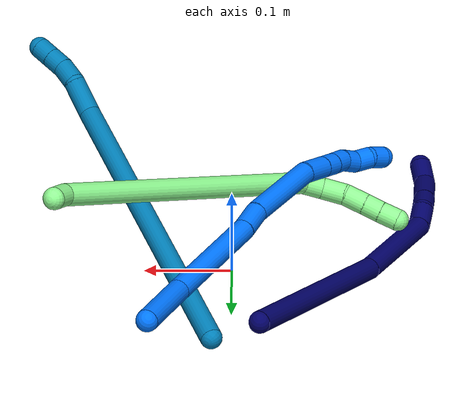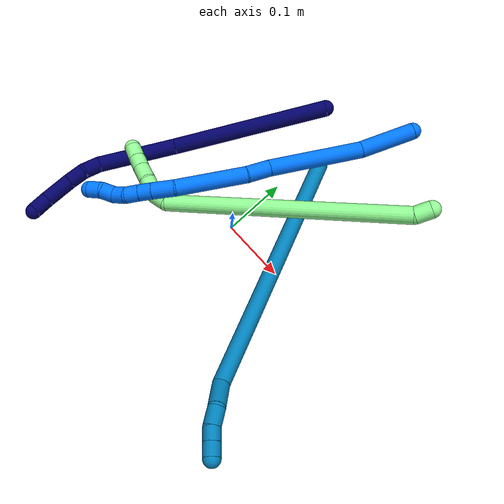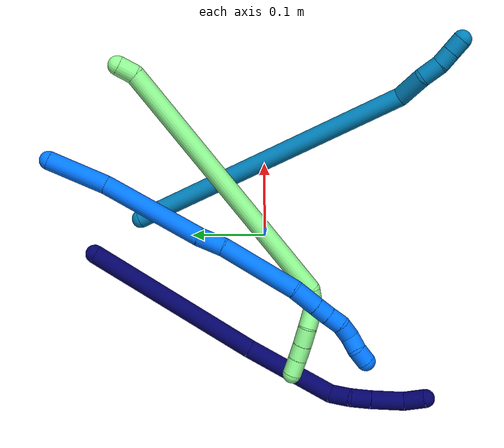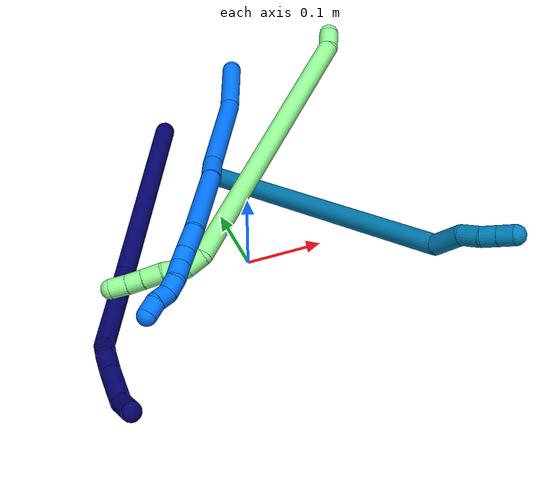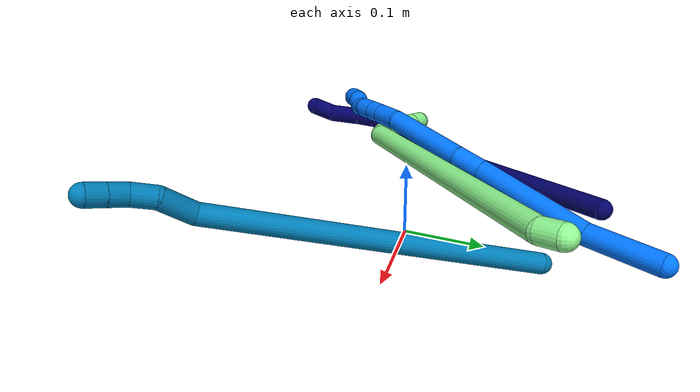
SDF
<sdf version="1.7">
 <world name="default">
  <model name="7">
   <static>0</static>
   <link name="7">
    <collision name="collision-cylinder-e_1_1_4">
     <pose>-0.037841 -0.088324 0.075043 0.866517 -0.315591 -0.146942</pose>
     <geometry><cylinder><radius>0.0125</radius><length>0.243839</length></cylinder></geometry>
     <surface>
      <friction><ode><mu>1.16</mu><mu2>1.16</mu2><slip1>0</slip1><slip2>0</slip2></ode></friction>
      <contact><ode><kp>1e+06</kp><kd>1</kd><max_vel>0</max_vel><min_depth>0.001</min_depth></ode></contact>
     </surface>
    </collision>
    <visual name="visual-cylinder-e_1_1_4">
     <pose>-0.037841 -0.088324 0.075043 0.866517 -0.315591 -0.146942</pose>
     <geometry><cylinder><radius>0.0125</radius><length>0.243839</length></cylinder></geometry>
     <material><ambient>0.003922 0 0.403922 1</ambient></material>
    </visual>
    <collision name="collision-cylinder-e_2_4_5">
     <pose>-0.102594 -0.223923 0.181554 0.983491 -0.442516 -0.239815</pose>
     <geometry><cylinder><radius>0.0125</radius><length>0.12569</length></cylinder></geometry>
     <surface>
      <friction><ode><mu>1.16</mu><mu2>1.16</mu2><slip1>0</slip1><slip2>0</slip2></ode></friction>
      <contact><ode><kp>1e+06</kp><kd>1</kd><max_vel>0</max_vel><min_depth>0.001</min_depth></ode></contact>
     </surface>
    </collision>
    <visual name="visual-cylinder-e_2_4_5">
     <pose>-0.102594 -0.223923 0.181554 0.983491 -0.442516 -0.239815</pose>
     <geometry><cylinder><radius>0.0125</radius><length>0.12569</length></cylinder></geometry>
     <material><ambient>0.003922 0 0.403922 1</ambient></material>
    </visual>
    <collision name="collision-cylinder-e_3_5_6">
     <pose>-0.140182 -0.279227 0.216536 1.15836 -0.883547 -0.599949</pose>
     <geometry><cylinder><radius>0.0125</radius><length>0.027625</length></cylinder></geometry>
     <surface>
      <friction><ode><mu>1.16</mu><mu2>1.16</mu2><slip1>0</slip1><slip2>0</slip2></ode></friction>
      <contact><ode><kp>1e+06</kp><kd>1</kd><max_vel>0</max_vel><min_depth>0.001</min_depth></ode></contact>
     </surface>
    </collision>
    <visual name="visual-cylinder-e_3_5_6">
     <pose>-0.140182 -0.279227 0.216536 1.15836 -0.883547 -0.599949</pose>
     <geometry><cylinder><radius>0.0125</radius><length>0.027625</length></cylinder></geometry>
     <material><ambient>0.003922 0 0.403922 1</ambient></material>
    </visual>
    <collision name="collision-cylinder-e_4_6_7">
     <pose>-0.15997 -0.29333 0.227853 0.661501 -0.7444 -0.266507</pose>
     <geometry><cylinder><radius>0.0125</radius><length>0.026894</length></cylinder></geometry>
     <surface>
      <friction><ode><mu>1.16</mu><mu2>1.16</mu2><slip1>0</slip1><slip2>0</slip2></ode></friction>
      <contact><ode><kp>1e+06</kp><kd>1</kd><max_vel>0</max_vel><min_depth>0.001</min_depth></ode></contact>
     </surface>
    </collision>
    <visual name="visual-cylinder-e_4_6_7">
     <pose>-0.15997 -0.29333 0.227853 0.661501 -0.7444 -0.266507</pose>
     <geometry><cylinder><radius>0.0125</radius><length>0.026894</length></cylinder></geometry>
     <material><ambient>0.003922 0 0.403922 1</ambient></material>
    </visual>
    <collision name="collision-cylinder-e_5_7_8">
     <pose>-0.18508 -0.30866 0.249514 0.588786 -0.76507 -0.242791</pose>
     <geometry><cylinder><radius>0.0125</radius><length>0.0462</length></cylinder></geometry>
     <surface>
      <friction><ode><mu>1.16</mu><mu2>1.16</mu2><slip1>0</slip1><slip2>0</slip2></ode></friction>
      <contact><ode><kp>1e+06</kp><kd>1</kd><max_vel>0</max_vel><min_depth>0.001</min_depth></ode></contact>
     </surface>
    </collision>
    <visual name="visual-cylinder-e_5_7_8">
     <pose>-0.18508 -0.30866 0.249514 0.588786 -0.76507 -0.242791</pose>
     <geometry><cylinder><radius>0.0125</radius><length>0.0462</length></cylinder></geometry>
     <material><ambient>0.003922 0 0.403922 1</ambient></material>
    </visual>
    <collision name="collision-cylinder-e_6_8_2">
     <pose>-0.214852 -0.322466 0.266665 0.944465 -1.18344 -0.661331</pose>
     <geometry><cylinder><radius>0.0125</radius><length>0.02975</length></cylinder></geometry>
     <surface>
      <friction><ode><mu>1.16</mu><mu2>1.16</mu2><slip1>0</slip1><slip2>0</slip2></ode></friction>
      <contact><ode><kp>1e+06</kp><kd>1</kd><max_vel>0</max_vel><min_depth>0.001</min_depth></ode></contact>
     </surface>
    </collision>
    <visual name="visual-cylinder-e_6_8_2">
     <pose>-0.214852 -0.322466 0.266665 0.944465 -1.18344 -0.661331</pose>
     <geometry><cylinder><radius>0.0125</radius><length>0.02975</length></cylinder></geometry>
     <material><ambient>0.003922 0 0.403922 1</ambient></material>
    </visual>
    <collision name="collision-sphere-2">
     <pose>-0.228625 -0.327018 0.269959 0 -0 0</pose>
     <geometry><sphere><radius>0.0125</radius></sphere></geometry>
     <surface>
      <friction><ode><mu>1.16</mu><mu2>1.16</mu2><slip1>0</slip1><slip2>0</slip2></ode></friction>
      <contact><ode><kp>1e+06</kp><kd>1</kd><max_vel>0</max_vel><min_depth>0.001</min_depth></ode></contact>
     </surface>
    </collision>
    <visual name="visual-sphere-2">
     <pose>-0.228625 -0.327018 0.269959 0 -0 0</pose>
     <geometry><sphere><radius>0.0125</radius></sphere></geometry>
     <material><ambient>0.003922 0 0.403922 1</ambient></material>
    </visual>
    <collision name="collision-sphere-4">
     <pose>-0.075682 -0.176647 0.150085 0 -0 0</pose>
     <geometry><sphere><radius>0.0125</radius></sphere></geometry>
     <surface>
      <friction><ode><mu>1.16</mu><mu2>1.16</mu2><slip1>0</slip1><slip2>0</slip2></ode></friction>
      <contact><ode><kp>1e+06</kp><kd>1</kd><max_vel>0</max_vel><min_depth>0.001</min_depth></ode></contact>
     </surface>
    </collision>
    <visual name="visual-sphere-4">
     <pose>-0.075682 -0.176647 0.150085 0 -0 0</pose>
     <geometry><sphere><radius>0.0125</radius></sphere></geometry>
     <material><ambient>0.003922 0 0.403922 1</ambient></material>
    </visual>
    <collision name="collision-sphere-1">
     <geometry><sphere><radius>0.0125</radius></sphere></geometry>
     <surface>
      <friction><ode><mu>1.16</mu><mu2>1.16</mu2><slip1>0</slip1><slip2>0</slip2></ode></friction>
      <contact><ode><kp>1e+06</kp><kd>1</kd><max_vel>0</max_vel><min_depth>0.001</min_depth></ode></contact>
     </surface>
    </collision>
    <visual name="visual-sphere-1">
     <geometry><sphere><radius>0.0125</radius></sphere></geometry>
     <material><ambient>0.003922 0 0.403922 1</ambient></material>
    </visual>
    <collision name="collision-sphere-8">
     <pose>-0.201079 -0.317914 0.263371 0 -0 0</pose>
     <geometry><sphere><radius>0.0125</radius></sphere></geometry>
     <surface>
      <friction><ode><mu>1.16</mu><mu2>1.16</mu2><slip1>0</slip1><slip2>0</slip2></ode></friction>
      <contact><ode><kp>1e+06</kp><kd>1</kd><max_vel>0</max_vel><min_depth>0.001</min_depth></ode></contact>
     </surface>
    </collision>
    <visual name="visual-sphere-8">
     <pose>-0.201079 -0.317914 0.263371 0 -0 0</pose>
     <geometry><sphere><radius>0.0125</radius></sphere></geometry>
     <material><ambient>0.003922 0 0.403922 1</ambient></material>
    </visual>
    <collision name="collision-sphere-5">
     <pose>-0.129505 -0.271198 0.213024 0 -0 0</pose>
     <geometry><sphere><radius>0.0125</radius></sphere></geometry>
     <surface>
      <friction><ode><mu>1.16</mu><mu2>1.16</mu2><slip1>0</slip1><slip2>0</slip2></ode></friction>
      <contact><ode><kp>1e+06</kp><kd>1</kd><max_vel>0</max_vel><min_depth>0.001</min_depth></ode></contact>
     </surface>
    </collision>
    <visual name="visual-sphere-5">
     <pose>-0.129505 -0.271198 0.213024 0 -0 0</pose>
     <geometry><sphere><radius>0.0125</radius></sphere></geometry>
     <material><ambient>0.003922 0 0.403922 1</ambient></material>
    </visual>
    <collision name="collision-sphere-6">
     <pose>-0.150859 -0.287255 0.220049 0 -0 0</pose>
     <geometry><sphere><radius>0.0125</radius></sphere></geometry>
     <surface>
      <friction><ode><mu>1.16</mu><mu2>1.16</mu2><slip1>0</slip1><slip2>0</slip2></ode></friction>
      <contact><ode><kp>1e+06</kp><kd>1</kd><max_vel>0</max_vel><min_depth>0.001</min_depth></ode></contact>
     </surface>
    </collision>
    <visual name="visual-sphere-6">
     <pose>-0.150859 -0.287255 0.220049 0 -0 0</pose>
     <geometry><sphere><radius>0.0125</radius></sphere></geometry>
     <material><ambient>0.003922 0 0.403922 1</ambient></material>
    </visual>
    <collision name="collision-sphere-7">
     <pose>-0.169081 -0.299406 0.235657 0 -0 0</pose>
     <geometry><sphere><radius>0.0125</radius></sphere></geometry>
     <surface>
      <friction><ode><mu>1.16</mu><mu2>1.16</mu2><slip1>0</slip1><slip2>0</slip2></ode></friction>
      <contact><ode><kp>1e+06</kp><kd>1</kd><max_vel>0</max_vel><min_depth>0.001</min_depth></ode></contact>
     </surface>
    </collision>
    <visual name="visual-sphere-7">
     <pose>-0.169081 -0.299406 0.235657 0 -0 0</pose>
     <geometry><sphere><radius>0.0125</radius></sphere></geometry>
     <material><ambient>0.003922 0 0.403922 1</ambient></material>
    </visual>
    <inertial>
     <pose>-0.090479 -0.178276 0.145378 0 -0 0</pose>
     <mass>0.5</mass>
     <inertia>
      <ixx>0.001078</ixx>
      <ixy>0</ixy>
      <ixz>0</ixz>
      <iyy>0.000709</iyy>
      <iyz>0</iyz>
      <izz>0.001504</izz>
     </inertia>
    </inertial>
   </link>
   <pose>-0.031316 0.226175 0.064194 -2.87135 0.510319 2.09467</pose>
  </model>
  <model name="9">
   <static>0</static>
   <link name="9">
    <collision name="collision-cylinder-e_1_1_4">
     <pose>0.023228 -0.149206 0.12324 0.880418 0.119456 0.05632</pose>
     <geometry><cylinder><radius>0.0125</radius><length>0.389821</length></cylinder></geometry>
     <surface>
      <friction><ode><mu>1.16</mu><mu2>1.16</mu2><slip1>0</slip1><slip2>0</slip2></ode></friction>
      <contact><ode><kp>1e+06</kp><kd>1</kd><max_vel>0</max_vel><min_depth>0.001</min_depth></ode></contact>
     </surface>
    </collision>
    <visual name="visual-cylinder-e_1_1_4">
     <pose>0.023228 -0.149206 0.12324 0.880418 0.119456 0.05632</pose>
     <geometry><cylinder><radius>0.0125</radius><length>0.389821</length></cylinder></geometry>
     <material><ambient>0 0.490196 0.709804 1</ambient></material>
    </visual>
    <collision name="collision-cylinder-e_2_4_5">
     <pose>0.058455 -0.313736 0.254701 1.07843 0.603975 0.368567</pose>
     <geometry><cylinder><radius>0.0125</radius><length>0.042255</length></cylinder></geometry>
     <surface>
      <friction><ode><mu>1.16</mu><mu2>1.16</mu2><slip1>0</slip1><slip2>0</slip2></ode></friction>
      <contact><ode><kp>1e+06</kp><kd>1</kd><max_vel>0</max_vel><min_depth>0.001</min_depth></ode></contact>
     </surface>
    </collision>
    <visual name="visual-cylinder-e_2_4_5">
     <pose>0.058455 -0.313736 0.254701 1.07843 0.603975 0.368567</pose>
     <geometry><cylinder><radius>0.0125</radius><length>0.042255</length></cylinder></geometry>
     <material><ambient>0 0.490196 0.709804 1</ambient></material>
    </visual>
    <collision name="collision-cylinder-e_3_5_6">
     <pose>0.073149 -0.340541 0.269435 1.05466 0.201463 0.117582</pose>
     <geometry><cylinder><radius>0.0125</radius><length>0.026945</length></cylinder></geometry>
     <surface>
      <friction><ode><mu>1.16</mu><mu2>1.16</mu2><slip1>0</slip1><slip2>0</slip2></ode></friction>
      <contact><ode><kp>1e+06</kp><kd>1</kd><max_vel>0</max_vel><min_depth>0.001</min_depth></ode></contact>
     </surface>
    </collision>
    <visual name="visual-cylinder-e_3_5_6">
     <pose>0.073149 -0.340541 0.269435 1.05466 0.201463 0.117582</pose>
     <geometry><cylinder><radius>0.0125</radius><length>0.026945</length></cylinder></geometry>
     <material><ambient>0 0.490196 0.709804 1</ambient></material>
    </visual>
    <collision name="collision-cylinder-e_4_6_7">
     <pose>0.078113 -0.361661 0.278658 1.29695 0.222763 0.169108</pose>
     <geometry><cylinder><radius>0.0125</radius><length>0.020534</length></cylinder></geometry>
     <surface>
      <friction><ode><mu>1.16</mu><mu2>1.16</mu2><slip1>0</slip1><slip2>0</slip2></ode></friction>
      <contact><ode><kp>1e+06</kp><kd>1</kd><max_vel>0</max_vel><min_depth>0.001</min_depth></ode></contact>
     </surface>
    </collision>
    <visual name="visual-cylinder-e_4_6_7">
     <pose>0.078113 -0.361661 0.278658 1.29695 0.222763 0.169108</pose>
     <geometry><cylinder><radius>0.0125</radius><length>0.020534</length></cylinder></geometry>
     <material><ambient>0 0.490196 0.709804 1</ambient></material>
    </visual>
    <collision name="collision-cylinder-e_5_7_2">
     <pose>0.082623 -0.380898 0.284083 1.29484 0.221089 0.167466</pose>
     <geometry><cylinder><radius>0.0125</radius><length>0.020446</length></cylinder></geometry>
     <surface>
      <friction><ode><mu>1.16</mu><mu2>1.16</mu2><slip1>0</slip1><slip2>0</slip2></ode></friction>
      <contact><ode><kp>1e+06</kp><kd>1</kd><max_vel>0</max_vel><min_depth>0.001</min_depth></ode></contact>
     </surface>
    </collision>
    <visual name="visual-cylinder-e_5_7_2">
     <pose>0.082623 -0.380898 0.284083 1.29484 0.221089 0.167466</pose>
     <geometry><cylinder><radius>0.0125</radius><length>0.020446</length></cylinder></geometry>
     <material><ambient>0 0.490196 0.709804 1</ambient></material>
    </visual>
    <collision name="collision-sphere-2">
     <pose>0.084865 -0.390494 0.286801 0 -0 0</pose>
     <geometry><sphere><radius>0.0125</radius></sphere></geometry>
     <surface>
      <friction><ode><mu>1.16</mu><mu2>1.16</mu2><slip1>0</slip1><slip2>0</slip2></ode></friction>
      <contact><ode><kp>1e+06</kp><kd>1</kd><max_vel>0</max_vel><min_depth>0.001</min_depth></ode></contact>
     </surface>
    </collision>
    <visual name="visual-sphere-2">
     <pose>0.084865 -0.390494 0.286801 0 -0 0</pose>
     <geometry><sphere><radius>0.0125</radius></sphere></geometry>
     <material><ambient>0 0.490196 0.709804 1</ambient></material>
    </visual>
    <collision name="collision-sphere-7">
     <pose>0.080381 -0.371301 0.281366 0 -0 0</pose>
     <geometry><sphere><radius>0.0125</radius></sphere></geometry>
     <surface>
      <friction><ode><mu>1.16</mu><mu2>1.16</mu2><slip1>0</slip1><slip2>0</slip2></ode></friction>
      <contact><ode><kp>1e+06</kp><kd>1</kd><max_vel>0</max_vel><min_depth>0.001</min_depth></ode></contact>
     </surface>
    </collision>
    <visual name="visual-sphere-7">
     <pose>0.080381 -0.371301 0.281366 0 -0 0</pose>
     <geometry><sphere><radius>0.0125</radius></sphere></geometry>
     <material><ambient>0 0.490196 0.709804 1</ambient></material>
    </visual>
    <collision name="collision-sphere-6">
     <pose>0.075845 -0.352021 0.27595 0 -0 0</pose>
     <geometry><sphere><radius>0.0125</radius></sphere></geometry>
     <surface>
      <friction><ode><mu>1.16</mu><mu2>1.16</mu2><slip1>0</slip1><slip2>0</slip2></ode></friction>
      <contact><ode><kp>1e+06</kp><kd>1</kd><max_vel>0</max_vel><min_depth>0.001</min_depth></ode></contact>
     </surface>
    </collision>
    <visual name="visual-sphere-6">
     <pose>0.075845 -0.352021 0.27595 0 -0 0</pose>
     <geometry><sphere><radius>0.0125</radius></sphere></geometry>
     <material><ambient>0 0.490196 0.709804 1</ambient></material>
    </visual>
    <collision name="collision-sphere-5">
     <pose>0.070453 -0.32906 0.262921 0 -0 0</pose>
     <geometry><sphere><radius>0.0125</radius></sphere></geometry>
     <surface>
      <friction><ode><mu>1.16</mu><mu2>1.16</mu2><slip1>0</slip1><slip2>0</slip2></ode></friction>
      <contact><ode><kp>1e+06</kp><kd>1</kd><max_vel>0</max_vel><min_depth>0.001</min_depth></ode></contact>
     </surface>
    </collision>
    <visual name="visual-sphere-5">
     <pose>0.070453 -0.32906 0.262921 0 -0 0</pose>
     <geometry><sphere><radius>0.0125</radius></sphere></geometry>
     <material><ambient>0 0.490196 0.709804 1</ambient></material>
    </visual>
    <collision name="collision-sphere-1">
     <geometry><sphere><radius>0.0125</radius></sphere></geometry>
     <surface>
      <friction><ode><mu>1.16</mu><mu2>1.16</mu2><slip1>0</slip1><slip2>0</slip2></ode></friction>
      <contact><ode><kp>1e+06</kp><kd>1</kd><max_vel>0</max_vel><min_depth>0.001</min_depth></ode></contact>
     </surface>
    </collision>
    <visual name="visual-sphere-1">
     <geometry><sphere><radius>0.0125</radius></sphere></geometry>
     <material><ambient>0 0.490196 0.709804 1</ambient></material>
    </visual>
    <collision name="collision-sphere-4">
     <pose>0.046456 -0.298412 0.24648 0 -0 0</pose>
     <geometry><sphere><radius>0.0125</radius></sphere></geometry>
     <surface>
      <friction><ode><mu>1.16</mu><mu2>1.16</mu2><slip1>0</slip1><slip2>0</slip2></ode></friction>
      <contact><ode><kp>1e+06</kp><kd>1</kd><max_vel>0</max_vel><min_depth>0.001</min_depth></ode></contact>
     </surface>
    </collision>
    <visual name="visual-sphere-4">
     <pose>0.046456 -0.298412 0.24648 0 -0 0</pose>
     <geometry><sphere><radius>0.0125</radius></sphere></geometry>
     <material><ambient>0 0.490196 0.709804 1</ambient></material>
    </visual>
    <inertial>
     <pose>0.033578 -0.191621 0.155188 0 -0 0</pose>
     <mass>0.5</mass>
     <inertia>
      <ixx>0.005207</ixx>
      <ixy>0</ixy>
      <ixz>0</ixz>
      <iyy>0.003431</iyy>
      <iyz>0</iyz>
      <izz>0.003228</izz>
     </inertia>
    </inertial>
   </link>
   <pose>0.022044 0.170648 0.0115 -0.686403 -1.42634 1.76835</pose>
  </model>
  <model name="13">
   <static>0</static>
   <link name="13">
    <collision name="collision-cylinder-e_1_1_4">
     <pose>-0.000231 -0.000376 -0.011914 3.11007 -0.019373 -1.10205</pose>
     <geometry><cylinder><radius>0.0125</radius><length>0.023843</length></cylinder></geometry>
     <surface>
      <friction><ode><mu>1.16</mu><mu2>1.16</mu2><slip1>0</slip1><slip2>0</slip2></ode></friction>
      <contact><ode><kp>1e+06</kp><kd>1</kd><max_vel>0</max_vel><min_depth>0.001</min_depth></ode></contact>
     </surface>
    </collision>
    <visual name="visual-cylinder-e_1_1_4">
     <pose>-0.000231 -0.000376 -0.011914 3.11007 -0.019373 -1.10205</pose>
     <geometry><cylinder><radius>0.0125</radius><length>0.023843</length></cylinder></geometry>
     <material><ambient>0.564706 0.984314 0.572549 1</ambient></material>
    </visual>
    <collision name="collision-cylinder-e_2_4_5">
     <pose>-0.070845 -0.024563 -0.18549 2.99535 -0.406706 -2.45894</pose>
     <geometry><cylinder><radius>0.0125</radius><length>0.355841</length></cylinder></geometry>
     <surface>
      <friction><ode><mu>1.16</mu><mu2>1.16</mu2><slip1>0</slip1><slip2>0</slip2></ode></friction>
      <contact><ode><kp>1e+06</kp><kd>1</kd><max_vel>0</max_vel><min_depth>0.001</min_depth></ode></contact>
     </surface>
    </collision>
    <visual name="visual-cylinder-e_2_4_5">
     <pose>-0.070845 -0.024563 -0.18549 2.99535 -0.406706 -2.45894</pose>
     <geometry><cylinder><radius>0.0125</radius><length>0.355841</length></cylinder></geometry>
     <material><ambient>0.564706 0.984314 0.572549 1</ambient></material>
    </visual>
    <collision name="collision-cylinder-e_3_5_6">
     <pose>-0.151035 -0.04954 -0.354746 2.98921 -0.906331 -2.83058</pose>
     <geometry><cylinder><radius>0.0125</radius><length>0.024915</length></cylinder></geometry>
     <surface>
      <friction><ode><mu>1.16</mu><mu2>1.16</mu2><slip1>0</slip1><slip2>0</slip2></ode></friction>
      <contact><ode><kp>1e+06</kp><kd>1</kd><max_vel>0</max_vel><min_depth>0.001</min_depth></ode></contact>
     </surface>
    </collision>
    <visual name="visual-cylinder-e_3_5_6">
     <pose>-0.151035 -0.04954 -0.354746 2.98921 -0.906331 -2.83058</pose>
     <geometry><cylinder><radius>0.0125</radius><length>0.024915</length></cylinder></geometry>
     <material><ambient>0.564706 0.984314 0.572549 1</ambient></material>
    </visual>
    <collision name="collision-cylinder-e_4_6_7">
     <pose>-0.174272 -0.054253 -0.364661 2.15055 -1.26502 -1.87079</pose>
     <geometry><cylinder><radius>0.0125</radius><length>0.028168</length></cylinder></geometry>
     <surface>
      <friction><ode><mu>1.16</mu><mu2>1.16</mu2><slip1>0</slip1><slip2>0</slip2></ode></friction>
      <contact><ode><kp>1e+06</kp><kd>1</kd><max_vel>0</max_vel><min_depth>0.001</min_depth></ode></contact>
     </surface>
    </collision>
    <visual name="visual-cylinder-e_4_6_7">
     <pose>-0.174272 -0.054253 -0.364661 2.15055 -1.26502 -1.87079</pose>
     <geometry><cylinder><radius>0.0125</radius><length>0.028168</length></cylinder></geometry>
     <material><ambient>0.564706 0.984314 0.572549 1</ambient></material>
    </visual>
    <collision name="collision-cylinder-e_5_7_8">
     <pose>-0.199702 -0.058452 -0.369649 2.90142 -1.34598 -2.84112</pose>
     <geometry><cylinder><radius>0.0125</radius><length>0.024619</length></cylinder></geometry>
     <surface>
      <friction><ode><mu>1.16</mu><mu2>1.16</mu2><slip1>0</slip1><slip2>0</slip2></ode></friction>
      <contact><ode><kp>1e+06</kp><kd>1</kd><max_vel>0</max_vel><min_depth>0.001</min_depth></ode></contact>
     </surface>
    </collision>
    <visual name="visual-cylinder-e_5_7_8">
     <pose>-0.199702 -0.058452 -0.369649 2.90142 -1.34598 -2.84112</pose>
     <geometry><cylinder><radius>0.0125</radius><length>0.024619</length></cylinder></geometry>
     <material><ambient>0.564706 0.984314 0.572549 1</ambient></material>
    </visual>
    <collision name="collision-cylinder-e_6_8_9">
     <pose>-0.221835 -0.059601 -0.374214 2.88653 -1.3794 -2.83315</pose>
     <geometry><cylinder><radius>0.0125</radius><length>0.020644</length></cylinder></geometry>
     <surface>
      <friction><ode><mu>1.16</mu><mu2>1.16</mu2><slip1>0</slip1><slip2>0</slip2></ode></friction>
      <contact><ode><kp>1e+06</kp><kd>1</kd><max_vel>0</max_vel><min_depth>0.001</min_depth></ode></contact>
     </surface>
    </collision>
    <visual name="visual-cylinder-e_6_8_9">
     <pose>-0.221835 -0.059601 -0.374214 2.88653 -1.3794 -2.83315</pose>
     <geometry><cylinder><radius>0.0125</radius><length>0.020644</length></cylinder></geometry>
     <material><ambient>0.564706 0.984314 0.572549 1</ambient></material>
    </visual>
    <collision name="collision-cylinder-e_7_9_2">
     <pose>-0.242775 -0.061138 -0.377792 2.58582 -1.38999 -2.48228</pose>
     <geometry><cylinder><radius>0.0125</radius><length>0.021971</length></cylinder></geometry>
     <surface>
      <friction><ode><mu>1.16</mu><mu2>1.16</mu2><slip1>0</slip1><slip2>0</slip2></ode></friction>
      <contact><ode><kp>1e+06</kp><kd>1</kd><max_vel>0</max_vel><min_depth>0.001</min_depth></ode></contact>
     </surface>
    </collision>
    <visual name="visual-cylinder-e_7_9_2">
     <pose>-0.242775 -0.061138 -0.377792 2.58582 -1.38999 -2.48228</pose>
     <geometry><cylinder><radius>0.0125</radius><length>0.021971</length></cylinder></geometry>
     <material><ambient>0.564706 0.984314 0.572549 1</ambient></material>
    </visual>
    <collision name="collision-sphere-2">
     <pose>-0.253582 -0.062181 -0.37947 0 -0 0</pose>
     <geometry><sphere><radius>0.0125</radius></sphere></geometry>
     <surface>
      <friction><ode><mu>1.16</mu><mu2>1.16</mu2><slip1>0</slip1><slip2>0</slip2></ode></friction>
      <contact><ode><kp>1e+06</kp><kd>1</kd><max_vel>0</max_vel><min_depth>0.001</min_depth></ode></contact>
     </surface>
    </collision>
    <visual name="visual-sphere-2">
     <pose>-0.253582 -0.062181 -0.37947 0 -0 0</pose>
     <geometry><sphere><radius>0.0125</radius></sphere></geometry>
     <material><ambient>0.564706 0.984314 0.572549 1</ambient></material>
    </visual>
    <collision name="collision-sphere-9">
     <pose>-0.231969 -0.060096 -0.376114 0 -0 0</pose>
     <geometry><sphere><radius>0.0125</radius></sphere></geometry>
     <surface>
      <friction><ode><mu>1.16</mu><mu2>1.16</mu2><slip1>0</slip1><slip2>0</slip2></ode></friction>
      <contact><ode><kp>1e+06</kp><kd>1</kd><max_vel>0</max_vel><min_depth>0.001</min_depth></ode></contact>
     </surface>
    </collision>
    <visual name="visual-sphere-9">
     <pose>-0.231969 -0.060096 -0.376114 0 -0 0</pose>
     <geometry><sphere><radius>0.0125</radius></sphere></geometry>
     <material><ambient>0.564706 0.984314 0.572549 1</ambient></material>
    </visual>
    <collision name="collision-sphere-4">
     <pose>-0.000462 -0.000751 -0.023827 0 -0 0</pose>
     <geometry><sphere><radius>0.0125</radius></sphere></geometry>
     <surface>
      <friction><ode><mu>1.16</mu><mu2>1.16</mu2><slip1>0</slip1><slip2>0</slip2></ode></friction>
      <contact><ode><kp>1e+06</kp><kd>1</kd><max_vel>0</max_vel><min_depth>0.001</min_depth></ode></contact>
     </surface>
    </collision>
    <visual name="visual-sphere-4">
     <pose>-0.000462 -0.000751 -0.023827 0 -0 0</pose>
     <geometry><sphere><radius>0.0125</radius></sphere></geometry>
     <material><ambient>0.564706 0.984314 0.572549 1</ambient></material>
    </visual>
    <collision name="collision-sphere-1">
     <geometry><sphere><radius>0.0125</radius></sphere></geometry>
     <surface>
      <friction><ode><mu>1.16</mu><mu2>1.16</mu2><slip1>0</slip1><slip2>0</slip2></ode></friction>
      <contact><ode><kp>1e+06</kp><kd>1</kd><max_vel>0</max_vel><min_depth>0.001</min_depth></ode></contact>
     </surface>
    </collision>
    <visual name="visual-sphere-1">
     <geometry><sphere><radius>0.0125</radius></sphere></geometry>
     <material><ambient>0.564706 0.984314 0.572549 1</ambient></material>
    </visual>
    <collision name="collision-sphere-8">
     <pose>-0.211702 -0.059105 -0.372314 0 -0 0</pose>
     <geometry><sphere><radius>0.0125</radius></sphere></geometry>
     <surface>
      <friction><ode><mu>1.16</mu><mu2>1.16</mu2><slip1>0</slip1><slip2>0</slip2></ode></friction>
      <contact><ode><kp>1e+06</kp><kd>1</kd><max_vel>0</max_vel><min_depth>0.001</min_depth></ode></contact>
     </surface>
    </collision>
    <visual name="visual-sphere-8">
     <pose>-0.211702 -0.059105 -0.372314 0 -0 0</pose>
     <geometry><sphere><radius>0.0125</radius></sphere></geometry>
     <material><ambient>0.564706 0.984314 0.572549 1</ambient></material>
    </visual>
    <collision name="collision-sphere-5">
     <pose>-0.141227 -0.048374 -0.347153 0 -0 0</pose>
     <geometry><sphere><radius>0.0125</radius></sphere></geometry>
     <surface>
      <friction><ode><mu>1.16</mu><mu2>1.16</mu2><slip1>0</slip1><slip2>0</slip2></ode></friction>
      <contact><ode><kp>1e+06</kp><kd>1</kd><max_vel>0</max_vel><min_depth>0.001</min_depth></ode></contact>
     </surface>
    </collision>
    <visual name="visual-sphere-5">
     <pose>-0.141227 -0.048374 -0.347153 0 -0 0</pose>
     <geometry><sphere><radius>0.0125</radius></sphere></geometry>
     <material><ambient>0.564706 0.984314 0.572549 1</ambient></material>
    </visual>
    <collision name="collision-sphere-6">
     <pose>-0.160842 -0.050706 -0.362339 0 -0 0</pose>
     <geometry><sphere><radius>0.0125</radius></sphere></geometry>
     <surface>
      <friction><ode><mu>1.16</mu><mu2>1.16</mu2><slip1>0</slip1><slip2>0</slip2></ode></friction>
      <contact><ode><kp>1e+06</kp><kd>1</kd><max_vel>0</max_vel><min_depth>0.001</min_depth></ode></contact>
     </surface>
    </collision>
    <visual name="visual-sphere-6">
     <pose>-0.160842 -0.050706 -0.362339 0 -0 0</pose>
     <geometry><sphere><radius>0.0125</radius></sphere></geometry>
     <material><ambient>0.564706 0.984314 0.572549 1</ambient></material>
    </visual>
    <collision name="collision-sphere-7">
     <pose>-0.187703 -0.0578 -0.366984 0 -0 0</pose>
     <geometry><sphere><radius>0.0125</radius></sphere></geometry>
     <surface>
      <friction><ode><mu>1.16</mu><mu2>1.16</mu2><slip1>0</slip1><slip2>0</slip2></ode></friction>
      <contact><ode><kp>1e+06</kp><kd>1</kd><max_vel>0</max_vel><min_depth>0.001</min_depth></ode></contact>
     </surface>
    </collision>
    <visual name="visual-sphere-7">
     <pose>-0.187703 -0.0578 -0.366984 0 -0 0</pose>
     <geometry><sphere><radius>0.0125</radius></sphere></geometry>
     <material><ambient>0.564706 0.984314 0.572549 1</ambient></material>
    </visual>
    <inertial>
     <pose>-0.097433 -0.031049 -0.22105 0 -0 0</pose>
     <mass>0.5</mass>
     <inertia>
      <ixx>-0.004894</ixx>
      <ixy>0</ixy>
      <ixz>0</ixz>
      <iyy>0.000847</iyy>
      <iyz>0</iyz>
      <izz>0.001977</izz>
     </inertia>
    </inertial>
   </link>
   <pose>0.189881 0.182403 0.191675 -1.24773 -0.344745 -0.532076</pose>
  </model>
  <model name="14">
   <static>0</static>
   <link name="14">
    <collision name="collision-cylinder-e_1_1_4">
     <pose>-0.018069 -0.027461 -0.024163 2.2924 -0.458819 -0.953565</pose>
     <geometry><cylinder><radius>0.0125</radius><length>0.081595</length></cylinder></geometry>
     <surface>
      <friction><ode><mu>1.16</mu><mu2>1.16</mu2><slip1>0</slip1><slip2>0</slip2></ode></friction>
      <contact><ode><kp>1e+06</kp><kd>1</kd><max_vel>0</max_vel><min_depth>0.001</min_depth></ode></contact>
     </surface>
    </collision>
    <visual name="visual-cylinder-e_1_1_4">
     <pose>-0.018069 -0.027461 -0.024163 2.2924 -0.458819 -0.953565</pose>
     <geometry><cylinder><radius>0.0125</radius><length>0.081595</length></cylinder></geometry>
     <material><ambient>0 0.462745 1 1</ambient></material>
    </visual>
    <collision name="collision-cylinder-e_2_4_5">
     <pose>-0.072953 -0.10614 -0.079932 2.12367 -0.548987 -0.934752</pose>
     <geometry><cylinder><radius>0.0125</radius><length>0.141105</length></cylinder></geometry>
     <surface>
      <friction><ode><mu>1.16</mu><mu2>1.16</mu2><slip1>0</slip1><slip2>0</slip2></ode></friction>
      <contact><ode><kp>1e+06</kp><kd>1</kd><max_vel>0</max_vel><min_depth>0.001</min_depth></ode></contact>
     </surface>
    </collision>
    <visual name="visual-cylinder-e_2_4_5">
     <pose>-0.072953 -0.10614 -0.079932 2.12367 -0.548987 -0.934752</pose>
     <geometry><cylinder><radius>0.0125</radius><length>0.141105</length></cylinder></geometry>
     <material><ambient>0 0.462745 1 1</ambient></material>
    </visual>
    <collision name="collision-cylinder-e_3_5_6">
     <pose>-0.11707 -0.171353 -0.119259 2.075 -0.428465 -0.706201</pose>
     <geometry><cylinder><radius>0.0125</radius><length>0.035144</length></cylinder></geometry>
     <surface>
      <friction><ode><mu>1.16</mu><mu2>1.16</mu2><slip1>0</slip1><slip2>0</slip2></ode></friction>
      <contact><ode><kp>1e+06</kp><kd>1</kd><max_vel>0</max_vel><min_depth>0.001</min_depth></ode></contact>
     </surface>
    </collision>
    <visual name="visual-cylinder-e_3_5_6">
     <pose>-0.11707 -0.171353 -0.119259 2.075 -0.428465 -0.706201</pose>
     <geometry><cylinder><radius>0.0125</radius><length>0.035144</length></cylinder></geometry>
     <material><ambient>0 0.462745 1 1</ambient></material>
    </visual>
    <collision name="collision-cylinder-e_4_6_7">
     <pose>-0.153712 -0.222313 -0.151688 2.15998 -0.583307 -1.02364</pose>
     <geometry><cylinder><radius>0.0125</radius><length>0.106542</length></cylinder></geometry>
     <surface>
      <friction><ode><mu>1.16</mu><mu2>1.16</mu2><slip1>0</slip1><slip2>0</slip2></ode></friction>
      <contact><ode><kp>1e+06</kp><kd>1</kd><max_vel>0</max_vel><min_depth>0.001</min_depth></ode></contact>
     </surface>
    </collision>
    <visual name="visual-cylinder-e_4_6_7">
     <pose>-0.153712 -0.222313 -0.151688 2.15998 -0.583307 -1.02364</pose>
     <geometry><cylinder><radius>0.0125</radius><length>0.106542</length></cylinder></geometry>
     <material><ambient>0 0.462745 1 1</ambient></material>
    </visual>
    <collision name="collision-cylinder-e_5_7_8">
     <pose>-0.194554 -0.267879 -0.18591 2.40668 -0.731031 -1.56499</pose>
     <geometry><cylinder><radius>0.0125</radius><length>0.034454</length></cylinder></geometry>
     <surface>
      <friction><ode><mu>1.16</mu><mu2>1.16</mu2><slip1>0</slip1><slip2>0</slip2></ode></friction>
      <contact><ode><kp>1e+06</kp><kd>1</kd><max_vel>0</max_vel><min_depth>0.001</min_depth></ode></contact>
     </surface>
    </collision>
    <visual name="visual-cylinder-e_5_7_8">
     <pose>-0.194554 -0.267879 -0.18591 2.40668 -0.731031 -1.56499</pose>
     <geometry><cylinder><radius>0.0125</radius><length>0.034454</length></cylinder></geometry>
     <material><ambient>0 0.462745 1 1</ambient></material>
    </visual>
    <collision name="collision-cylinder-e_6_8_9">
     <pose>-0.21268 -0.281495 -0.201098 2.41752 -0.718657 -1.5626</pose>
     <geometry><cylinder><radius>0.0125</radius><length>0.020122</length></cylinder></geometry>
     <surface>
      <friction><ode><mu>1.16</mu><mu2>1.16</mu2><slip1>0</slip1><slip2>0</slip2></ode></friction>
      <contact><ode><kp>1e+06</kp><kd>1</kd><max_vel>0</max_vel><min_depth>0.001</min_depth></ode></contact>
     </surface>
    </collision>
    <visual name="visual-cylinder-e_6_8_9">
     <pose>-0.21268 -0.281495 -0.201098 2.41752 -0.718657 -1.5626</pose>
     <geometry><cylinder><radius>0.0125</radius><length>0.020122</length></cylinder></geometry>
     <material><ambient>0 0.462745 1 1</ambient></material>
    </visual>
    <collision name="collision-cylinder-e_7_9_10">
     <pose>-0.225825 -0.291918 -0.212759 2.40721 -0.679806 -1.48685</pose>
     <geometry><cylinder><radius>0.0125</radius><length>0.020749</length></cylinder></geometry>
     <surface>
      <friction><ode><mu>1.16</mu><mu2>1.16</mu2><slip1>0</slip1><slip2>0</slip2></ode></friction>
      <contact><ode><kp>1e+06</kp><kd>1</kd><max_vel>0</max_vel><min_depth>0.001</min_depth></ode></contact>
     </surface>
    </collision>
    <visual name="visual-cylinder-e_7_9_10">
     <pose>-0.225825 -0.291918 -0.212759 2.40721 -0.679806 -1.48685</pose>
     <geometry><cylinder><radius>0.0125</radius><length>0.020749</length></cylinder></geometry>
     <material><ambient>0 0.462745 1 1</ambient></material>
    </visual>
    <collision name="collision-cylinder-e_8_10_11">
     <pose>-0.240442 -0.299613 -0.224263 2.74836 -0.935291 -2.39021</pose>
     <geometry><cylinder><radius>0.0125</radius><length>0.020119</length></cylinder></geometry>
     <surface>
      <friction><ode><mu>1.16</mu><mu2>1.16</mu2><slip1>0</slip1><slip2>0</slip2></ode></friction>
      <contact><ode><kp>1e+06</kp><kd>1</kd><max_vel>0</max_vel><min_depth>0.001</min_depth></ode></contact>
     </surface>
    </collision>
    <visual name="visual-cylinder-e_8_10_11">
     <pose>-0.240442 -0.299613 -0.224263 2.74836 -0.935291 -2.39021</pose>
     <geometry><cylinder><radius>0.0125</radius><length>0.020119</length></cylinder></geometry>
     <material><ambient>0 0.462745 1 1</ambient></material>
    </visual>
    <collision name="collision-cylinder-e_9_11_12">
     <pose>-0.257436 -0.306296 -0.231205 1.88471 -1.09183 -1.39255</pose>
     <geometry><cylinder><radius>0.0125</radius><length>0.020054</length></cylinder></geometry>
     <surface>
      <friction><ode><mu>1.16</mu><mu2>1.16</mu2><slip1>0</slip1><slip2>0</slip2></ode></friction>
      <contact><ode><kp>1e+06</kp><kd>1</kd><max_vel>0</max_vel><min_depth>0.001</min_depth></ode></contact>
     </surface>
    </collision>
    <visual name="visual-cylinder-e_9_11_12">
     <pose>-0.257436 -0.306296 -0.231205 1.88471 -1.09183 -1.39255</pose>
     <geometry><cylinder><radius>0.0125</radius><length>0.020054</length></cylinder></geometry>
     <material><ambient>0 0.462745 1 1</ambient></material>
    </visual>
    <collision name="collision-cylinder-e_10_12_2">
     <pose>-0.274526 -0.313957 -0.237471 2.54795 -0.951575 -2.0702</pose>
     <geometry><cylinder><radius>0.0125</radius><length>0.020117</length></cylinder></geometry>
     <surface>
      <friction><ode><mu>1.16</mu><mu2>1.16</mu2><slip1>0</slip1><slip2>0</slip2></ode></friction>
      <contact><ode><kp>1e+06</kp><kd>1</kd><max_vel>0</max_vel><min_depth>0.001</min_depth></ode></contact>
     </surface>
    </collision>
    <visual name="visual-cylinder-e_10_12_2">
     <pose>-0.274526 -0.313957 -0.237471 2.54795 -0.951575 -2.0702</pose>
     <geometry><cylinder><radius>0.0125</radius><length>0.020117</length></cylinder></geometry>
     <material><ambient>0 0.462745 1 1</ambient></material>
    </visual>
    <collision name="collision-sphere-2">
     <pose>-0.282717 -0.317222 -0.242311 0 -0 0</pose>
     <geometry><sphere><radius>0.0125</radius></sphere></geometry>
     <surface>
      <friction><ode><mu>1.16</mu><mu2>1.16</mu2><slip1>0</slip1><slip2>0</slip2></ode></friction>
      <contact><ode><kp>1e+06</kp><kd>1</kd><max_vel>0</max_vel><min_depth>0.001</min_depth></ode></contact>
     </surface>
    </collision>
    <visual name="visual-sphere-2">
     <pose>-0.282717 -0.317222 -0.242311 0 -0 0</pose>
     <geometry><sphere><radius>0.0125</radius></sphere></geometry>
     <material><ambient>0 0.462745 1 1</ambient></material>
    </visual>
    <collision name="collision-sphere-12">
     <pose>-0.266335 -0.310691 -0.232632 0 -0 0</pose>
     <geometry><sphere><radius>0.0125</radius></sphere></geometry>
     <surface>
      <friction><ode><mu>1.16</mu><mu2>1.16</mu2><slip1>0</slip1><slip2>0</slip2></ode></friction>
      <contact><ode><kp>1e+06</kp><kd>1</kd><max_vel>0</max_vel><min_depth>0.001</min_depth></ode></contact>
     </surface>
    </collision>
    <visual name="visual-sphere-12">
     <pose>-0.266335 -0.310691 -0.232632 0 -0 0</pose>
     <geometry><sphere><radius>0.0125</radius></sphere></geometry>
     <material><ambient>0 0.462745 1 1</ambient></material>
    </visual>
    <collision name="collision-sphere-11">
     <pose>-0.248538 -0.301901 -0.229778 0 -0 0</pose>
     <geometry><sphere><radius>0.0125</radius></sphere></geometry>
     <surface>
      <friction><ode><mu>1.16</mu><mu2>1.16</mu2><slip1>0</slip1><slip2>0</slip2></ode></friction>
      <contact><ode><kp>1e+06</kp><kd>1</kd><max_vel>0</max_vel><min_depth>0.001</min_depth></ode></contact>
     </surface>
    </collision>
    <visual name="visual-sphere-11">
     <pose>-0.248538 -0.301901 -0.229778 0 -0 0</pose>
     <geometry><sphere><radius>0.0125</radius></sphere></geometry>
     <material><ambient>0 0.462745 1 1</ambient></material>
    </visual>
    <collision name="collision-sphere-10">
     <pose>-0.232347 -0.297325 -0.218748 0 -0 0</pose>
     <geometry><sphere><radius>0.0125</radius></sphere></geometry>
     <surface>
      <friction><ode><mu>1.16</mu><mu2>1.16</mu2><slip1>0</slip1><slip2>0</slip2></ode></friction>
      <contact><ode><kp>1e+06</kp><kd>1</kd><max_vel>0</max_vel><min_depth>0.001</min_depth></ode></contact>
     </surface>
    </collision>
    <visual name="visual-sphere-10">
     <pose>-0.232347 -0.297325 -0.218748 0 -0 0</pose>
     <geometry><sphere><radius>0.0125</radius></sphere></geometry>
     <material><ambient>0 0.462745 1 1</ambient></material>
    </visual>
    <collision name="collision-sphere-9">
     <pose>-0.219303 -0.286512 -0.206771 0 -0 0</pose>
     <geometry><sphere><radius>0.0125</radius></sphere></geometry>
     <surface>
      <friction><ode><mu>1.16</mu><mu2>1.16</mu2><slip1>0</slip1><slip2>0</slip2></ode></friction>
      <contact><ode><kp>1e+06</kp><kd>1</kd><max_vel>0</max_vel><min_depth>0.001</min_depth></ode></contact>
     </surface>
    </collision>
    <visual name="visual-sphere-9">
     <pose>-0.219303 -0.286512 -0.206771 0 -0 0</pose>
     <geometry><sphere><radius>0.0125</radius></sphere></geometry>
     <material><ambient>0 0.462745 1 1</ambient></material>
    </visual>
    <collision name="collision-sphere-4">
     <pose>-0.036138 -0.054922 -0.048326 0 -0 0</pose>
     <geometry><sphere><radius>0.0125</radius></sphere></geometry>
     <surface>
      <friction><ode><mu>1.16</mu><mu2>1.16</mu2><slip1>0</slip1><slip2>0</slip2></ode></friction>
      <contact><ode><kp>1e+06</kp><kd>1</kd><max_vel>0</max_vel><min_depth>0.001</min_depth></ode></contact>
     </surface>
    </collision>
    <visual name="visual-sphere-4">
     <pose>-0.036138 -0.054922 -0.048326 0 -0 0</pose>
     <geometry><sphere><radius>0.0125</radius></sphere></geometry>
     <material><ambient>0 0.462745 1 1</ambient></material>
    </visual>
    <collision name="collision-sphere-1">
     <geometry><sphere><radius>0.0125</radius></sphere></geometry>
     <surface>
      <friction><ode><mu>1.16</mu><mu2>1.16</mu2><slip1>0</slip1><slip2>0</slip2></ode></friction>
      <contact><ode><kp>1e+06</kp><kd>1</kd><max_vel>0</max_vel><min_depth>0.001</min_depth></ode></contact>
     </surface>
    </collision>
    <visual name="visual-sphere-1">
     <geometry><sphere><radius>0.0125</radius></sphere></geometry>
     <material><ambient>0 0.462745 1 1</ambient></material>
    </visual>
    <collision name="collision-sphere-8">
     <pose>-0.206056 -0.276479 -0.195425 0 -0 0</pose>
     <geometry><sphere><radius>0.0125</radius></sphere></geometry>
     <surface>
      <friction><ode><mu>1.16</mu><mu2>1.16</mu2><slip1>0</slip1><slip2>0</slip2></ode></friction>
      <contact><ode><kp>1e+06</kp><kd>1</kd><max_vel>0</max_vel><min_depth>0.001</min_depth></ode></contact>
     </surface>
    </collision>
    <visual name="visual-sphere-8">
     <pose>-0.206056 -0.276479 -0.195425 0 -0 0</pose>
     <geometry><sphere><radius>0.0125</radius></sphere></geometry>
     <material><ambient>0 0.462745 1 1</ambient></material>
    </visual>
    <collision name="collision-sphere-5">
     <pose>-0.109769 -0.157359 -0.111537 0 -0 0</pose>
     <geometry><sphere><radius>0.0125</radius></sphere></geometry>
     <surface>
      <friction><ode><mu>1.16</mu><mu2>1.16</mu2><slip1>0</slip1><slip2>0</slip2></ode></friction>
      <contact><ode><kp>1e+06</kp><kd>1</kd><max_vel>0</max_vel><min_depth>0.001</min_depth></ode></contact>
     </surface>
    </collision>
    <visual name="visual-sphere-5">
     <pose>-0.109769 -0.157359 -0.111537 0 -0 0</pose>
     <geometry><sphere><radius>0.0125</radius></sphere></geometry>
     <material><ambient>0 0.462745 1 1</ambient></material>
    </visual>
    <collision name="collision-sphere-6">
     <pose>-0.124371 -0.185348 -0.126981 0 -0 0</pose>
     <geometry><sphere><radius>0.0125</radius></sphere></geometry>
     <surface>
      <friction><ode><mu>1.16</mu><mu2>1.16</mu2><slip1>0</slip1><slip2>0</slip2></ode></friction>
      <contact><ode><kp>1e+06</kp><kd>1</kd><max_vel>0</max_vel><min_depth>0.001</min_depth></ode></contact>
     </surface>
    </collision>
    <visual name="visual-sphere-6">
     <pose>-0.124371 -0.185348 -0.126981 0 -0 0</pose>
     <geometry><sphere><radius>0.0125</radius></sphere></geometry>
     <material><ambient>0 0.462745 1 1</ambient></material>
    </visual>
    <collision name="collision-sphere-7">
     <pose>-0.183053 -0.259279 -0.176395 0 -0 0</pose>
     <geometry><sphere><radius>0.0125</radius></sphere></geometry>
     <surface>
      <friction><ode><mu>1.16</mu><mu2>1.16</mu2><slip1>0</slip1><slip2>0</slip2></ode></friction>
      <contact><ode><kp>1e+06</kp><kd>1</kd><max_vel>0</max_vel><min_depth>0.001</min_depth></ode></contact>
     </surface>
    </collision>
    <visual name="visual-sphere-7">
     <pose>-0.183053 -0.259279 -0.176395 0 -0 0</pose>
     <geometry><sphere><radius>0.0125</radius></sphere></geometry>
     <material><ambient>0 0.462745 1 1</ambient></material>
    </visual>
    <inertial>
     <pose>-0.126901 -0.172724 -0.124789 0 -0 0</pose>
     <mass>0.5</mass>
     <inertia>
      <ixx>-0.000113</ixx>
      <ixy>0</ixy>
      <ixz>0</ixz>
      <iyy>-0.000288</iyy>
      <iyz>0</iyz>
      <izz>0.000485</izz>
     </inertia>
    </inertial>
   </link>
   <pose>0.088524 0.282974 0.09907 -0.73037 -0.176995 0.050804</pose>
  </model>
 </world>
</sdf>
